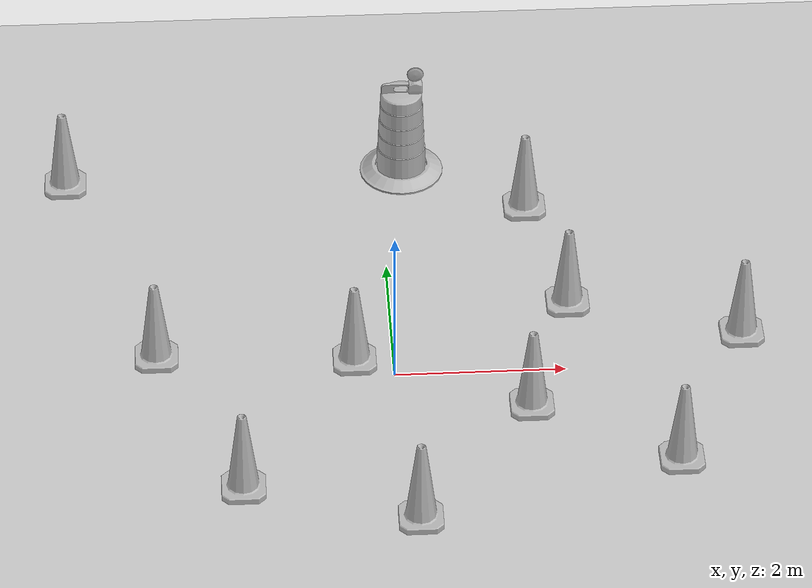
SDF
<sdf version="1.7">
 <world name="default">
  <light name="sun" type="directional">
   <pose>0 0 10 0 -0 0</pose>
   <diffuse>0.8 0.8 0.8 1</diffuse>
   <specular>0.2 0.2 0.2 1</specular>
   <attenuation>
    <range>1000</range>
    <constant>0.9</constant>
    <linear>0.01</linear>
    <quadratic>0.001</quadratic>
   </attenuation>
   <direction>-0.5 0.1 -0.9</direction>
   <spot><inner_angle>0</inner_angle><outer_angle>0</outer_angle><falloff>0</falloff></spot>
  </light>
  <model name="ground_plane">
   <static>1</static>
   <link name="link">
    <collision name="collision">
     <geometry><plane><normal>0 0 1</normal><size>100 100</size></plane></geometry>
     <surface><friction><ode><mu>100</mu><mu2>50</mu2></ode></friction></surface>
    </collision>
    <visual name="visual">
     <cast_shadows>0</cast_shadows>
     <geometry><plane><normal>0 0 1</normal><size>100 100</size></plane></geometry>
     <material>
      <script><uri>file://media/materials/scripts/gazebo.material</uri><name>Gazebo/Grey</name></script>
     </material>
    </visual>
   </link>
  </model>
  <gravity>0 0 -9.8</gravity>
  <magnetic_field>6e-06 2.3e-05 -4.2e-05</magnetic_field>
  <atmosphere type="adiabatic"/>
  <physics type="ode">
   <max_step_size>0.001</max_step_size>
   <real_time_factor>1</real_time_factor>
   <real_time_update_rate>1000</real_time_update_rate>
  </physics>
  <scene><ambient>0.4 0.4 0.4 1</ambient><background>0.7 0.7 0.7 1</background><shadows>1</shadows></scene>
  <audio><device>default</device></audio>
  <spherical_coordinates>
   <surface_model>EARTH_WGS84</surface_model>
   <latitude_deg>0</latitude_deg>
   <longitude_deg>0</longitude_deg>
   <elevation>0</elevation>
   <heading_deg>0</heading_deg>
  </spherical_coordinates>
  <model name="Construction Barrel">
   <link name="link">
    <inertial>
     <pose>0 0 0.4 0 -0 0</pose>
     <mass>500</mass>
     <inertia><ixx>51.2096</ixx><iyy>51.2096</iyy><izz>25</izz><ixy>0</ixy><ixz>0</ixz><iyz>0</iyz></inertia>
    </inertial>
    <collision name="collision">
     <geometry><mesh><uri>model://construction_barrel/meshes/construction_barrel.dae</uri></mesh></geometry>
    </collision>
    <visual name="visual">
     <geometry><mesh><uri>model://construction_barrel/meshes/construction_barrel.dae</uri></mesh></geometry>
    </visual>
   </link>
   <pose>0.277928 3.91092 -1e-06 2e-06 -1e-06 -2e-05</pose>
  </model>
  <model name="Construction Cone">
   <link name="link">
    <collision name="collision">
     <geometry>
      <mesh><scale>10 10 10</scale><uri>model://construction_cone/meshes/construction_cone.dae</uri></mesh>
     </geometry>
    </collision>
    <visual name="visual">
     <geometry>
      <mesh><scale>10 10 10</scale><uri>model://construction_cone/meshes/construction_cone.dae</uri></mesh>
     </geometry>
    </visual>
    <inertial>
     <inertia><ixx>1</ixx><ixy>0</ixy><ixz>0</ixz><iyy>1</iyy><iyz>0</iyz><izz>1</izz></inertia>
     <mass>1</mass>
    </inertial>
   </link>
   <pose>0.165309 -2.52724 -0 0 -1e-06 0</pose>
  </model>
  <model name="Construction Cone_clone">
   <link name="link">
    <collision name="collision">
     <geometry>
      <mesh><scale>10 10 10</scale><uri>model://construction_cone/meshes/construction_cone.dae</uri></mesh>
     </geometry>
    </collision>
    <visual name="visual">
     <geometry>
      <mesh><scale>10 10 10</scale><uri>model://construction_cone/meshes/construction_cone.dae</uri></mesh>
     </geometry>
    </visual>
    <inertial>
     <inertia><ixx>1</ixx><ixy>0</ixy><ixz>0</ixz><iyy>1</iyy><iyz>0</iyz><izz>1</izz></inertia>
     <mass>1</mass>
    </inertial>
   </link>
   <pose>1.55259 -0.648581 -0 0 -0 0</pose>
  </model>
  <model name="Construction Cone_clone_0">
   <link name="link">
    <collision name="collision">
     <geometry>
      <mesh><scale>10 10 10</scale><uri>model://construction_cone/meshes/construction_cone.dae</uri></mesh>
     </geometry>
    </collision>
    <visual name="visual">
     <geometry>
      <mesh><scale>10 10 10</scale><uri>model://construction_cone/meshes/construction_cone.dae</uri></mesh>
     </geometry>
    </visual>
    <inertial>
     <inertia><ixx>1</ixx><ixy>0</ixy><ixz>0</ixz><iyy>1</iyy><iyz>0</iyz><izz>1</izz></inertia>
     <mass>1</mass>
    </inertial>
   </link>
   <pose>-2.77174 0.422345 -0 0 -1e-06 0</pose>
  </model>
  <model name="Construction Cone_clone_1">
   <link name="link">
    <collision name="collision">
     <geometry>
      <mesh><scale>10 10 10</scale><uri>model://construction_cone/meshes/construction_cone.dae</uri></mesh>
     </geometry>
    </collision>
    <visual name="visual">
     <geometry>
      <mesh><scale>10 10 10</scale><uri>model://construction_cone/meshes/construction_cone.dae</uri></mesh>
     </geometry>
    </visual>
    <inertial>
     <inertia><ixx>1</ixx><ixy>0</ixy><ixz>0</ixz><iyy>1</iyy><iyz>0</iyz><izz>1</izz></inertia>
     <mass>1</mass>
    </inertial>
   </link>
   <pose>-1.81011 -1.92112 -1e-05 0 -0 0</pose>
  </model>
  <model name="Construction Cone_clone_2">
   <link name="link">
    <collision name="collision">
     <geometry>
      <mesh><scale>10 10 10</scale><uri>model://construction_cone/meshes/construction_cone.dae</uri></mesh>
     </geometry>
    </collision>
    <visual name="visual">
     <geometry>
      <mesh><scale>10 10 10</scale><uri>model://construction_cone/meshes/construction_cone.dae</uri></mesh>
     </geometry>
    </visual>
    <inertial>
     <inertia><ixx>1</ixx><ixy>0</ixy><ixz>0</ixz><iyy>1</iyy><iyz>0</iyz><izz>1</izz></inertia>
     <mass>1</mass>
    </inertial>
   </link>
   <pose>1.73557 3.06109 -0 0 -1e-06 0</pose>
  </model>
  <model name="Construction Cone_clone_3">
   <link name="link">
    <collision name="collision">
     <geometry>
      <mesh><scale>10 10 10</scale><uri>model://construction_cone/meshes/construction_cone.dae</uri></mesh>
     </geometry>
    </collision>
    <visual name="visual">
     <geometry>
      <mesh><scale>10 10 10</scale><uri>model://construction_cone/meshes/construction_cone.dae</uri></mesh>
     </geometry>
    </visual>
    <inertial>
     <inertia><ixx>1</ixx><ixy>0</ixy><ixz>0</ixz><iyy>1</iyy><iyz>0</iyz><izz>1</izz></inertia>
     <mass>1</mass>
    </inertial>
   </link>
   <pose>3.18973 -1.66526 -0 0 -1e-06 0</pose>
  </model>
  <model name="Construction Cone_clone_4">
   <link name="link">
    <collision name="collision">
     <geometry>
      <mesh><scale>10 10 10</scale><uri>model://construction_cone/meshes/construction_cone.dae</uri></mesh>
     </geometry>
    </collision>
    <visual name="visual">
     <geometry>
      <mesh><scale>10 10 10</scale><uri>model://construction_cone/meshes/construction_cone.dae</uri></mesh>
     </geometry>
    </visual>
    <inertial>
     <inertia><ixx>1</ixx><ixy>0</ixy><ixz>0</ixz><iyy>1</iyy><iyz>0</iyz><izz>1</izz></inertia>
     <mass>1</mass>
    </inertial>
   </link>
   <pose>4.11725 0.532769 -1e-06 1e-06 -2e-06 -0</pose>
  </model>
  <model name="Construction Cone_clone_5">
   <link name="link">
    <collision name="collision">
     <geometry>
      <mesh><scale>10 10 10</scale><uri>model://construction_cone/meshes/construction_cone.dae</uri></mesh>
     </geometry>
    </collision>
    <visual name="visual">
     <geometry>
      <mesh><scale>10 10 10</scale><uri>model://construction_cone/meshes/construction_cone.dae</uri></mesh>
     </geometry>
    </visual>
    <inertial>
     <inertia><ixx>1</ixx><ixy>0</ixy><ixz>0</ixz><iyy>1</iyy><iyz>0</iyz><izz>1</izz></inertia>
     <mass>1</mass>
    </inertial>
   </link>
   <pose>-3.85842 3.77542 -0 0 -0 0</pose>
  </model>
  <model name="Construction Cone_clone_6">
   <link name="link">
    <collision name="collision">
     <geometry>
      <mesh><scale>10 10 10</scale><uri>model://construction_cone/meshes/construction_cone.dae</uri></mesh>
     </geometry>
    </collision>
    <visual name="visual">
     <geometry>
      <mesh><scale>10 10 10</scale><uri>model://construction_cone/meshes/construction_cone.dae</uri></mesh>
     </geometry>
    </visual>
    <inertial>
     <inertia><ixx>1</ixx><ixy>0</ixy><ixz>0</ixz><iyy>1</iyy><iyz>0</iyz><izz>1</izz></inertia>
     <mass>1</mass>
    </inertial>
   </link>
   <pose>2.11362 1.19796 0 -0 -0 -0</pose>
  </model>
  <model name="Construction Cone_clone_7">
   <link name="link">
    <collision name="collision">
     <geometry>
      <mesh><scale>10 10 10</scale><uri>model://construction_cone/meshes/construction_cone.dae</uri></mesh>
     </geometry>
    </collision>
    <visual name="visual">
     <geometry>
      <mesh><scale>10 10 10</scale><uri>model://construction_cone/meshes/construction_cone.dae</uri></mesh>
     </geometry>
    </visual>
    <inertial>
     <inertia><ixx>1</ixx><ixy>0</ixy><ixz>0</ixz><iyy>1</iyy><iyz>0</iyz><izz>1</izz></inertia>
     <mass>1</mass>
    </inertial>
   </link>
   <pose>-0.458796 0.256991 -0 0 -1e-06 0</pose>
  </model>
 </world>
</sdf>
